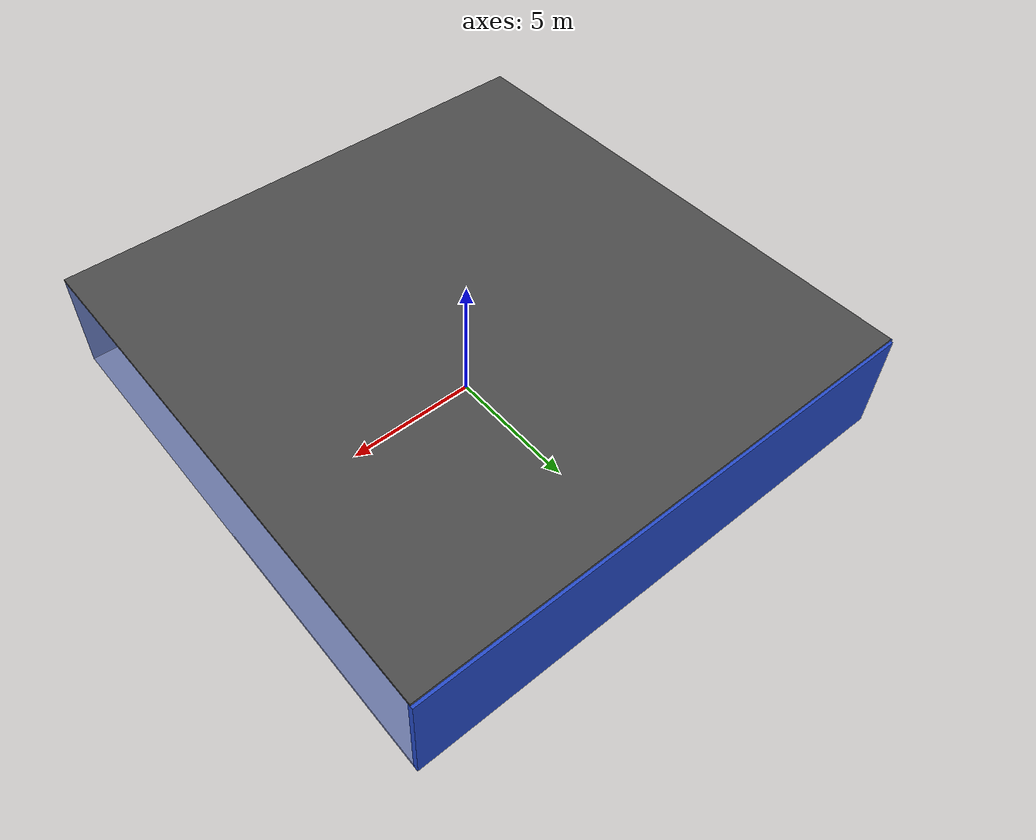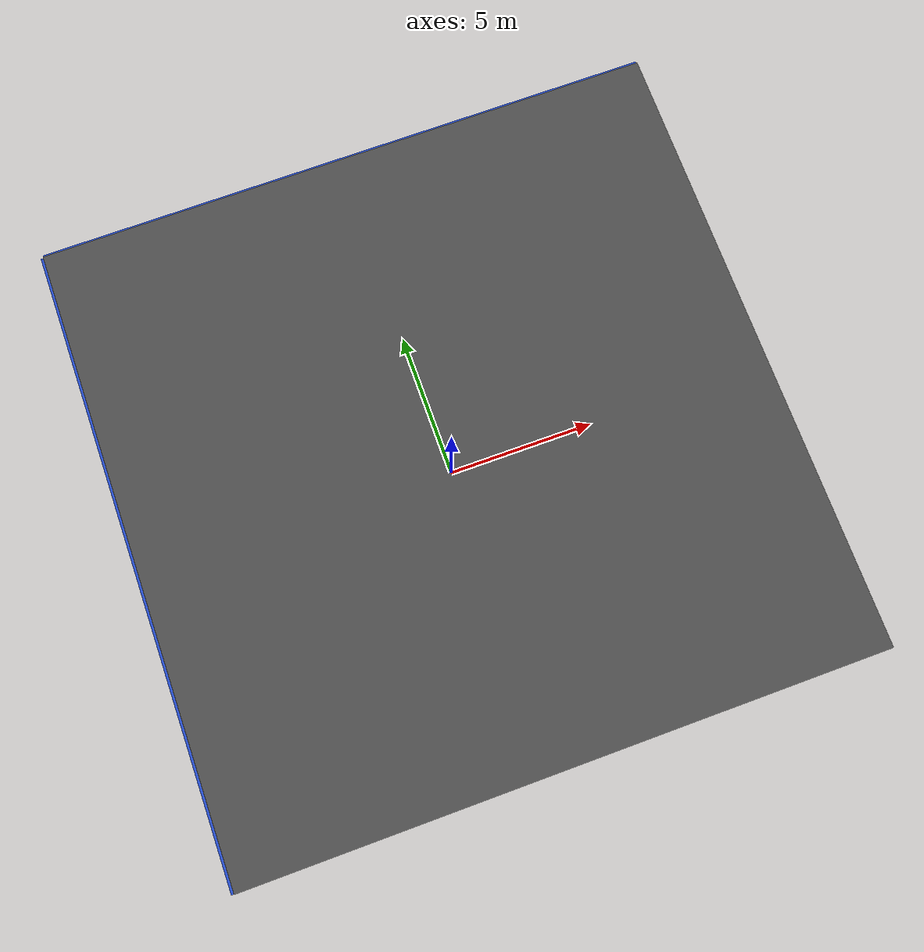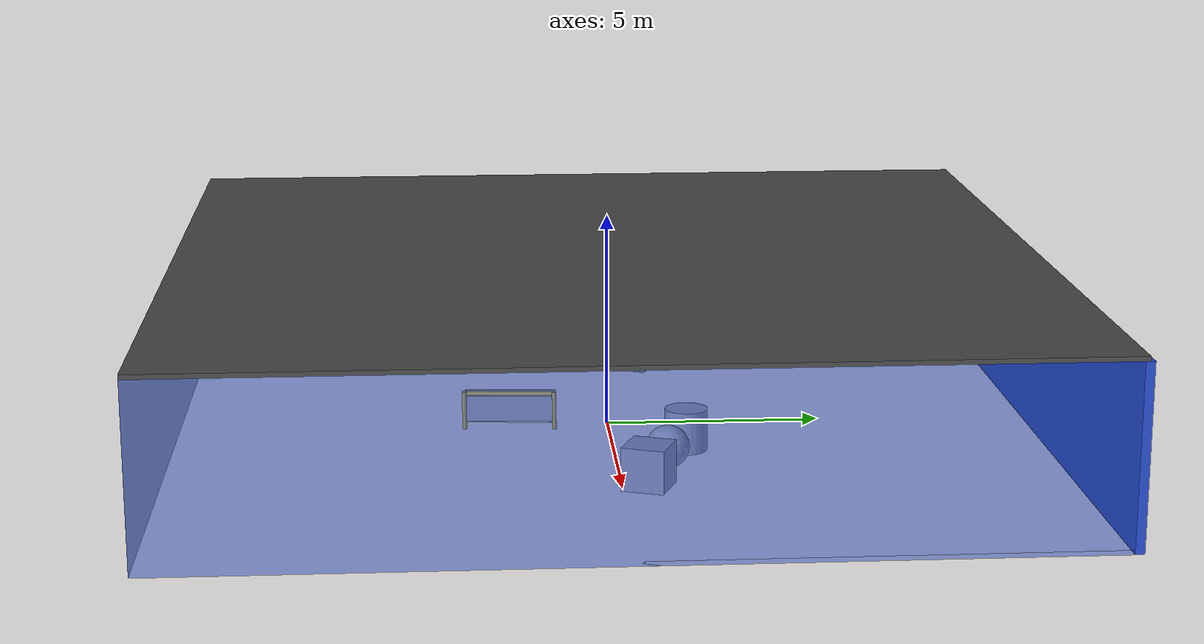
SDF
<sdf version="1.4">
 <world name="default">
  <physics type="ode">
   <max_step_size>0.001</max_step_size>
   <real_time_factor>1</real_time_factor>
   <real_time_update_rate>1000</real_time_update_rate>
   <gravity>0 0 -9.8</gravity>
  </physics>
  <scene><ambient>0.4 0.4 0.4 1</ambient><background>0.7 0.7 0.7 1</background><shadows>1</shadows></scene>
  <model name="Surrounding">
   <static>1</static>
   <link name="Ceiling">
    <collision name="Ceiling_Collision"><geometry><box><size>20 20 0.1</size></box></geometry></collision>
    <visual name="Ceiling_Visual">
     <geometry><box><size>20 20 0.1</size></box></geometry>
     <material>
      <script><uri>file://media/materials/scripts/gazebo.material</uri><name>Gazebo/Road</name></script>
     </material>
    </visual>
    <pose>0 0 4.05 0 0 0</pose>
   </link>
   <link name="Wall_South">
    <collision name="Wall_South_Collision">
     <geometry><box><size>20 0 4</size></box></geometry>
     <pose>0 0 2 0 -0 0</pose>
    </collision>
    <visual name="Wall_South_Visual">
     <pose>0 0 2 0 -0 0</pose>
     <geometry><box><size>20 0 4</size></box></geometry>
     <material>
      <script><uri>file://media/materials/scripts/gazebo.material</uri><name>Gazebo/Pioneer2Body</name></script>
     </material>
    </visual>
    <velocity_decay><linear>0</linear><angular>0</angular></velocity_decay>
    <pose>0 -10 0 0 -0 0</pose>
   </link>
   <link name="Wall_East">
    <collision name="Wall_21_Collision">
     <geometry><box><size>20 0 4</size></box></geometry>
     <pose>0 0 2 0 -0 0</pose>
    </collision>
    <visual name="Wall_21_Visual">
     <pose>0 0 2 0 -0 0</pose>
     <geometry><box><size>20 0 4</size></box></geometry>
     <material>
      <script><uri>file://media/materials/scripts/gazebo.material</uri><name>Gazebo/BlueTransparent</name></script>
     </material>
    </visual>
    <velocity_decay><linear>0</linear><angular>0</angular></velocity_decay>
    <pose>10 0 0 0 -0 1.5708</pose>
   </link>
   <link name="Wall_North">
    <collision name="Wall_22_Collision">
     <geometry><box><size>20 0.2 4</size></box></geometry>
     <pose>0 0 2 0 -0 0</pose>
    </collision>
    <visual name="Wall_22_Visual">
     <pose>0 0 2 0 -0 0</pose>
     <geometry><box><size>20 0.2 4</size></box></geometry>
     <material>
      <script><uri>file://media/materials/scripts/gazebo.material</uri><name>Gazebo/BlueLaser</name></script>
     </material>
    </visual>
    <velocity_decay><linear>0</linear><angular>0</angular></velocity_decay>
    <pose>0 10 0 0 -0 0</pose>
   </link>
   <link name="Wall_West">
    <collision name="Wall_23_Collision">
     <geometry><box><size>20 0.2 4</size></box></geometry>
     <pose>0 0 2 0 -0 0</pose>
    </collision>
    <visual name="Wall_23_Visual">
     <pose>0 0 2 0 -0 0</pose>
     <geometry><box><size>20 0.2 4</size></box></geometry>
     <material>
      <script><uri>file://media/materials/scripts/gazebo.material</uri><name>Gazebo/BlueLaser</name></script>
     </material>
    </visual>
    <velocity_decay><linear>0</linear><angular>0</angular></velocity_decay>
    <pose>-10 0 0 0 0 -1.5708</pose>
   </link>
   <link name="Ground_link">
    <collision name="collision">
     <pose>0 0 .05 0 -0 0</pose>
     <geometry><box><size>20 20 0.1</size></box></geometry>
    </collision>
    <visual name="visual">
     <pose>0 0 .05 0 -0 0</pose>
     <geometry><box><size>20 20 0.1</size></box></geometry>
     <material>
      <script><uri>file://media/materials/scripts/gazebo.material</uri><name>Gazebo/BlueTransparent</name></script>
     </material>
    </visual>
   </link>
   <static>1</static>
  </model>
  <spherical_coordinates>
   <surface_model>EARTH_WGS84</surface_model>
   <latitude_deg>0</latitude_deg>
   <longitude_deg>0</longitude_deg>
   <elevation>0</elevation>
   <heading_deg>0</heading_deg>
  </spherical_coordinates>
  <light name="lightball_0" type="diffuse">
   <diffuse>0.8 0.8 0.8 1</diffuse>
   <specular>0.2 0.2 0.2 1</specular>
   <attenuation>
    <range>100</range>
    <constant>0.7</constant>
    <linear>0.01</linear>
    <quadratic>0.001</quadratic>
   </attenuation>
   <direction>-0.5 0.1 -0.9</direction>
   <pose>8.44528927683 -8.83814878148 1.20469371537 0 0 0</pose>
  </light>
  <include>
   <uri>model://textured_shapes</uri>
   <pose>-8.55577268953 -6.79656609639 0 0 0 0.300464543246</pose>
  </include>
  <include>
   <uri>model://robocup_3Dsim_goal</uri>
   <pose>-7.52885911698 -3.37642637421 0 0 0 0.175427020114</pose>
  </include>
  <include>
   <uri>model://robocup_3Dsim_goal</uri>
   <pose>-5.63850964756 1.19605246818 0 0 0 1.11884474928</pose>
  </include>
  <include>
   <uri>model://robocup_3Dsim_goal</uri>
   <pose>0.32986475557 -2.3081014274 0 0 0 3.06679868283</pose>
  </include>
  <include>
   <uri>model://textured_shapes</uri>
   <pose>1.99797873803 1.26709851431 0 0 0 1.19150035409</pose>
  </include>
 </world>
</sdf>

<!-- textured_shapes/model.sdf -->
<sdf version="1.6">
  <model name="textured_shapes">
    <pose>0 0 0.5 0 0 0</pose>
    <link name="box">
      <pose>0 -1.5 0 0 0 0</pose>
      <collision name="collision">
        <geometry>
          <box>
            <size>1 1 1</size>
          </box>
        </geometry>
      </collision>
      <visual name="visual">
        <geometry>
          <box>
            <size>1 1 1</size>
          </box>
        </geometry>
        <material>
          <script>
            <uri>model://../model_source/models/textured_shapes/materials/scripts</uri>
            <uri>model://../model_source/models/textured_shapes/materials/textures</uri>
            <name>TexturedShape/Squares</name>
          </script>
        </material>
      </visual>
    </link>
    <link name="sphere">
      <collision name="collision">
        <geometry>
          <sphere>
            <radius>0.5</radius>
          </sphere>
        </geometry>
      </collision>
      <visual name="visual">
        <geometry>
          <sphere>
            <radius>0.5</radius>
          </sphere>
        </geometry>
        <material>
          <script>
            <uri>model://../model_source/models/textured_shapes/materials/scripts</uri>
            <uri>model://../model_source/models/textured_shapes/materials/textures</uri>
            <name>TexturedShape/Squares</name>
          </script>
        </material>
      </visual>
    </link>
    <link name="cylinder">
      <pose>0 1.5 0 0 0 0</pose>
      <collision name="collision">
        <geometry>
          <cylinder>
            <radius>0.5</radius>
            <length>1</length>
          </cylinder>
        </geometry>
      </collision>
      <visual name="visual">
        <geometry>
          <cylinder>
            <radius>0.5</radius>
            <length>1</length>
          </cylinder>
        </geometry>
        <material>
          <script>
            <uri>model://../model_source/models/textured_shapes/materials/scripts</uri>
            <uri>model://../model_source/models/textured_shapes/materials/textures</uri>
            <name>TexturedShape/Squares</name>
          </script>
        </material>
      </visual>
    </link>
  </model>
</sdf>

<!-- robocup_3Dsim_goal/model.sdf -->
<sdf version="1.5">
  <model name="robocup_3d_goal">
    <static>true</static>
    <link name="left_post">
      <pose>0 1.05 0.45 0 0 0</pose>
      <collision name="collision">
        <geometry>
          <cylinder>
            <radius>0.05</radius>
            <length>0.9</length>
          </cylinder>
        </geometry>
      </collision>
      <visual name="visual">
        <geometry>
          <cylinder>
            <radius>0.05</radius>
            <length>0.9</length>
          </cylinder>
        </geometry>
        <material>
          <script>
            <uri>file://media/materials/scripts/gazebo.material</uri>
            <name>Gazebo/ZincYellow</name>
          </script>
        </material>
      </visual>
    </link>
    <link name="left_support_horiz_lower">
      <pose>0.30 1.05 0.01 0 0 0</pose>
      <collision name="collision">
        <geometry>
          <box>
            <size>0.50 0.02 0.02</size>
          </box>
        </geometry>
      </collision>
      <visual name="visual">
        <geometry>
          <box>
            <size>0.50 0.02 0.02</size>
          </box>
        </geometry>
        <material>
          <script>
            <uri>file://media/materials/scripts/gazebo.material</uri>
            <name>Gazebo/White</name>
          </script>
        </material>
      </visual>
    </link>
    <link name="left_support_horiz_upper">
      <pose>0.30 1.05 0.79 0 0 0</pose>
      <collision name="collision">
        <geometry>
          <box>
            <size>0.50 0.02 0.02</size>
          </box>
        </geometry>
      </collision>
      <visual name="visual">
        <geometry>
          <box>
            <size>0.50 0.02 0.02</size>
          </box>
        </geometry>
        <material>
          <script>
            <uri>file://media/materials/scripts/gazebo.material</uri>
            <name>Gazebo/White</name>
          </script>
        </material>
      </visual>
    </link>
    <link name="left_support_vertical">
      <pose>0.56 1.05 0.4 0 1.5708 0</pose>
      <collision name="collision">
        <geometry>
          <box>
            <size>0.80 0.02 0.02</size>
          </box>
        </geometry>
      </collision>
      <visual name="visual">
        <geometry>
          <box>
            <size>0.80 0.02 0.02</size>
          </box>
        </geometry>
        <material>
          <script>
            <uri>file://media/materials/scripts/gazebo.material</uri>
            <name>Gazebo/White</name>
          </script>
        </material>
      </visual>
    </link>
    <link name="right_support_horiz_lower">
      <pose>0.30 -1.05 0.01 0 0 0</pose>
      <collision name="collision">
        <geometry>
          <box>
            <size>0.50 0.02 0.02</size>
          </box>
        </geometry>
      </collision>
      <visual name="visual">
        <geometry>
          <box>
            <size>0.50 0.02 0.02</size>
          </box>
        </geometry>
        <material>
          <script>
            <uri>file://media/materials/scripts/gazebo.material</uri>
            <name>Gazebo/White</name>
          </script>
        </material>
      </visual>
    </link>
    <link name="right_support_horiz_upper">
      <pose>0.30 -1.05 0.79 0 0 0</pose>
      <collision name="collision">
        <geometry>
          <box>
            <size>0.50 0.02 0.02</size>
          </box>
        </geometry>
      </collision>
      <visual name="visual">
        <geometry>
          <box>
            <size>0.50 0.02 0.02</size>
          </box>
        </geometry>
        <material>
          <script>
            <uri>file://media/materials/scripts/gazebo.material</uri>
            <name>Gazebo/White</name>
          </script>
        </material>
      </visual>
    </link>
    <link name="right_support_vertical">
      <pose>0.56 -1.05 0.4 0 1.5708 0</pose>
      <collision name="collision">
        <geometry>
          <box>
            <size>0.80 0.02 0.02</size>
          </box>
        </geometry>
      </collision>
      <visual name="visual">
        <geometry>
          <box>
            <size>0.80 0.02 0.02</size>
          </box>
        </geometry>
        <material>
          <script>
            <uri>file://media/materials/scripts/gazebo.material</uri>
            <name>Gazebo/White</name>
          </script>
        </material>
      </visual>
    </link>
    <link name="center_support_horiz_lower">
      <pose>0.56 0 0.01 0 1.5708 0</pose>
      <collision name="collision">
        <geometry>
          <box>
            <size>0.02 2.08 0.02</size>
          </box>
        </geometry>
      </collision>
      <visual name="visual">
        <geometry>
          <box>
            <size>0.02 2.08 0.02</size>
          </box>
        </geometry>
        <material>
          <script>
            <uri>file://media/materials/scripts/gazebo.material</uri>
            <name>Gazebo/White</name>
          </script>
        </material>
      </visual>
    </link>
    <link name="center_support_horiz_upper">
      <pose>0.56 0 0.79 0 1.5708 0</pose>
      <collision name="collision">
        <geometry>
          <box>
            <size>0.02 2.08 0.02</size>
          </box>
        </geometry>
      </collision>
      <visual name="visual">
        <geometry>
          <box>
            <size>0.02 2.08 0.02</size>
          </box>
        </geometry>
        <material>
          <script>
            <uri>file://media/materials/scripts/gazebo.material</uri>
            <name>Gazebo/White</name>
          </script>
        </material>
      </visual>
    </link>
    <link name="right_post">
      <pose>0 -1.05 0.45 0 0 0</pose>
      <collision name="collision">
        <geometry>
          <cylinder>
            <radius>0.05</radius>
            <length>0.9</length>
          </cylinder>
        </geometry>
      </collision>
      <visual name="visual">
        <geometry>
          <cylinder>
            <radius>0.05</radius>
            <length>0.9</length>
          </cylinder>
        </geometry>
        <material>
          <script>
            <uri>file://media/materials/scripts/gazebo.material</uri>
            <name>Gazebo/ZincYellow</name>
          </script>
        </material>
      </visual>
    </link>
    <link name="crossbar">
      <pose>0 0 0.85 1.57 1.57 0</pose>
      <collision name="collision">
        <geometry>
          <cylinder>
            <radius>0.05</radius>
            <length>2.0</length>
          </cylinder>
        </geometry>
      </collision>
      <visual name="visual">
        <geometry>
          <cylinder>
            <radius>0.05</radius>
            <length>2.0</length>
          </cylinder>
        </geometry>
        <material>
          <script>
            <uri>file://media/materials/scripts/gazebo.material</uri>
            <name>Gazebo/ZincYellow</name>
          </script>
        </material>
      </visual>
    </link>
    <link name="center_net">
      <pose>0.56 0 0.40 0 0 0</pose>
      <collision name="collision">
        <geometry>
          <box>
            <size>0.01 2.1 0.80</size>
          </box>
        </geometry>
      </collision>
      <visual name="visual">
        <geometry>
          <box>
            <size>0.01 2.1 0.80</size>
          </box>
        </geometry>
        <material>
          <script>
            <uri>model://../model_source/models/robocup09_spl_field/materials/scripts/</uri>
            <uri>model://../model_source/models/robocup09_spl_field/materials/textures/</uri>
            <name>RoboCup/Net</name>
          </script>
        </material>
      </visual>
    </link>
    <link name="left_net">
      <pose>0.30 1.05 0.40 0 0 0</pose>
      <collision name="collision">
        <geometry>
          <box>
            <size>0.50 0.01 0.76</size>
          </box>
        </geometry>
      </collision>
      <visual name="visual">
        <geometry>
          <box>
            <size>0.50 0.01 0.76</size>
          </box>
        </geometry>
        <material>
          <script>
            <uri>model://../model_source/models/robocup09_spl_field/materials/scripts/</uri>
            <uri>model://../model_source/models/robocup09_spl_field/materials/textures/</uri>
            <name>RoboCup/Net</name>
          </script>
        </material>
      </visual>
    </link>
    <link name="right_net">
      <pose>0.30 -1.05 0.40 0 0 0</pose>
      <collision name="collision">
        <geometry>
          <box>
            <size>0.50 0.01 0.76</size>
          </box>
        </geometry>
      </collision>
      <visual name="visual">
        <geometry>
          <box>
            <size>0.50 0.01 0.76</size>
          </box>
        </geometry>
        <material>
          <script>
            <uri>model://../model_source/models/robocup09_spl_field/materials/scripts/</uri>
            <uri>model://../model_source/models/robocup09_spl_field/materials/textures/</uri>
            <name>RoboCup/Net</name>
          </script>
        </material>
      </visual>
    </link>
  </model>
</sdf>
